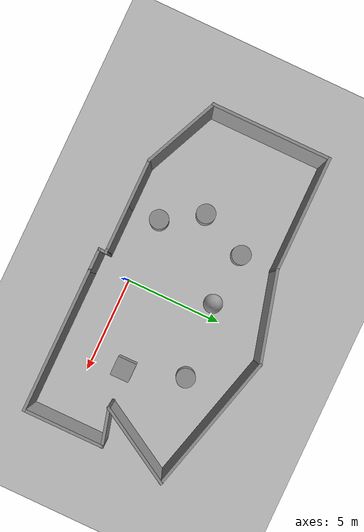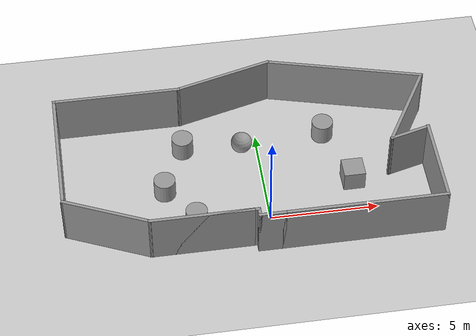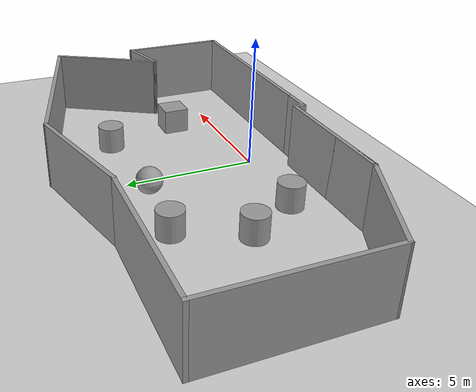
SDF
<sdf version="1.7">
 <world name="default">
  <light name="sun" type="directional">
   <pose>0 0 10 0 -0 0</pose>
   <diffuse>0.8 0.8 0.8 1</diffuse>
   <specular>0.2 0.2 0.2 1</specular>
   <attenuation>
    <range>1000</range>
    <constant>0.9</constant>
    <linear>0.01</linear>
    <quadratic>0.001</quadratic>
   </attenuation>
   <direction>-0.5 0.1 -0.9</direction>
   <spot><inner_angle>0</inner_angle><outer_angle>0</outer_angle><falloff>0</falloff></spot>
  </light>
  <model name="ground_plane">
   <static>1</static>
   <link name="link">
    <collision name="collision">
     <geometry><plane><normal>0 0 1</normal><size>100 100</size></plane></geometry>
     <surface>
      <contact><collide_bitmask>65535</collide_bitmask></contact>
      <friction><ode><mu>100</mu><mu2>50</mu2></ode></friction>
     </surface>
    </collision>
    <visual name="visual">
     <cast_shadows>0</cast_shadows>
     <geometry><plane><normal>0 0 1</normal><size>100 100</size></plane></geometry>
     <material>
      <script><uri>file://media/materials/scripts/gazebo.material</uri><name>Gazebo/Grey</name></script>
     </material>
    </visual>
   </link>
  </model>
  <gravity>0 0 -9.8</gravity>
  <magnetic_field>6e-06 2.3e-05 -4.2e-05</magnetic_field>
  <atmosphere type="adiabatic"/>
  <physics type="ode">
   <max_step_size>0.001</max_step_size>
   <real_time_factor>1</real_time_factor>
   <real_time_update_rate>1000</real_time_update_rate>
  </physics>
  <scene><ambient>0.4 0.4 0.4 1</ambient><background>0.7 0.7 0.7 1</background><shadows>1</shadows></scene>
  <spherical_coordinates>
   <surface_model>EARTH_WGS84</surface_model>
   <latitude_deg>0</latitude_deg>
   <longitude_deg>0</longitude_deg>
   <elevation>0</elevation>
   <heading_deg>0</heading_deg>
  </spherical_coordinates>
  <model name="Untitled">
   <pose>-0.623697 2.90946 0 0 -0 0</pose>
   <link name="Wall_10">
    <collision name="Wall_10_Collision">
     <geometry><box><size>2 0.15 2.5</size></box></geometry>
     <pose>0 0 1.25 0 -0 0</pose>
    </collision>
    <visual name="Wall_10_Visual">
     <pose>0 0 1.25 0 -0 0</pose>
     <geometry><box><size>2 0.15 2.5</size></box></geometry>
     <material>
      <script><uri>file://media/materials/scripts/gazebo.material</uri><name>Gazebo/Grey</name></script>
      <ambient>1 1 1 1</ambient>
     </material>
     <meta><layer>0</layer></meta>
    </visual>
    <pose>7.41318 -0.793193 0 0 -0 -2.87979</pose>
   </link>
   <link name="Wall_11">
    <collision name="Wall_11_Collision">
     <geometry><box><size>4.5 0.15 2.5</size></box></geometry>
     <pose>0 0 1.25 0 -0 0</pose>
    </collision>
    <visual name="Wall_11_Visual">
     <pose>0 0 1.25 0 -0 0</pose>
     <geometry><box><size>4.5 0.15 2.5</size></box></geometry>
     <material>
      <script><uri>file://media/materials/scripts/gazebo.material</uri><name>Gazebo/Grey</name></script>
      <ambient>1 1 1 1</ambient>
     </material>
     <meta><layer>0</layer></meta>
    </visual>
    <pose>7.60719 0.851004 0 0 -0 1.0472</pose>
   </link>
   <link name="Wall_12">
    <collision name="Wall_12_Collision">
     <geometry><box><size>7.5 0.15 2.5</size></box></geometry>
     <pose>0 0 1.25 0 -0 0</pose>
    </collision>
    <visual name="Wall_12_Visual">
     <pose>0 0 1.25 0 -0 0</pose>
     <geometry><box><size>7.5 0.15 2.5</size></box></geometry>
     <material>
      <script><uri>file://media/materials/scripts/gazebo.material</uri><name>Gazebo/Grey</name></script>
      <ambient>1 1 1 1</ambient>
     </material>
     <meta><layer>0</layer></meta>
    </visual>
    <pose>5.14492 3.68577 0 0 -0 2.87979</pose>
   </link>
   <link name="Wall_13">
    <collision name="Wall_13_Collision">
     <geometry><box><size>4.75 0.15 2.5</size></box></geometry>
     <pose>0 0 1.25 0 -0 0</pose>
    </collision>
    <visual name="Wall_13_Visual">
     <pose>0 0 1.25 0 -0 0</pose>
     <geometry><box><size>4.75 0.15 2.5</size></box></geometry>
     <material>
      <script><uri>file://media/materials/scripts/gazebo.material</uri><name>Gazebo/Grey</name></script>
      <ambient>1 1 1 1</ambient>
     </material>
     <meta><layer>0</layer></meta>
    </visual>
    <pose>-0.62649 4.04165 0 0 -0 -2.87979</pose>
   </link>
   <link name="Wall_14">
    <collision name="Wall_14_Collision">
     <geometry><box><size>6 0.15 2.5</size></box></geometry>
     <pose>0 0 1.25 0 -0 0</pose>
    </collision>
    <visual name="Wall_14_Visual">
     <pose>0 0 1.25 0 -0 0</pose>
     <geometry><box><size>6 0.15 2.5</size></box></geometry>
     <material>
      <script><uri>file://media/materials/scripts/gazebo.material</uri><name>Gazebo/Grey</name></script>
      <ambient>1 1 1 1</ambient>
     </material>
     <meta><layer>0</layer></meta>
    </visual>
    <pose>-5.77312 3.44636 0 0 -0 3.14159</pose>
   </link>
   <link name="Wall_15">
    <collision name="Wall_15_Collision">
     <geometry><box><size>6.25 0.15 2.5</size></box></geometry>
     <pose>0 0 1.25 0 -0 0</pose>
    </collision>
    <visual name="Wall_15_Visual">
     <pose>0 0 1.25 0 -0 0</pose>
     <geometry><box><size>6.25 0.15 2.5</size></box></geometry>
     <material>
      <script><uri>file://media/materials/scripts/gazebo.material</uri><name>Gazebo/Grey</name></script>
      <ambient>1 1 1 1</ambient>
     </material>
     <meta><layer>0</layer></meta>
    </visual>
    <pose>-8.69812 0.396362 0 0 -0 -1.5708</pose>
   </link>
   <link name="Wall_16">
    <collision name="Wall_16_Collision">
     <geometry><box><size>4.20566 0.15 2.5</size></box></geometry>
     <pose>0 0 1.25 0 -0 0</pose>
    </collision>
    <visual name="Wall_16_Visual">
     <pose>0 0 1.25 0 -0 0</pose>
     <geometry><box><size>4.20566 0.15 2.5</size></box></geometry>
     <material>
      <script><uri>file://media/materials/scripts/gazebo.material</uri><name>Gazebo/Grey</name></script>
      <ambient>1 1 1 1</ambient>
     </material>
     <meta><layer>0</layer></meta>
    </visual>
    <pose>-6.84573 -3.47871 0 0 -0 -0.419031</pose>
   </link>
   <link name="Wall_3">
    <collision name="Wall_3_Collision">
     <geometry><box><size>4.75 0.15 2.5</size></box></geometry>
     <pose>0 0 1.25 0 -0 0</pose>
    </collision>
    <visual name="Wall_3_Visual">
     <pose>0 0 1.25 0 -0 0</pose>
     <geometry><box><size>4.75 0.15 2.5</size></box></geometry>
     <material>
      <script><uri>file://media/materials/scripts/gazebo.material</uri><name>Gazebo/Grey</name></script>
      <ambient>1 1 1 1</ambient>
     </material>
     <meta><layer>0</layer></meta>
    </visual>
    <pose>-2.69334 -4.30379 0 0 -0 3.14159</pose>
   </link>
   <link name="Wall_4">
    <collision name="Wall_4_Collision">
     <geometry><box><size>5 0.15 2.5</size></box></geometry>
     <pose>0 0 1.25 0 -0 0</pose>
    </collision>
    <visual name="Wall_4_Visual">
     <pose>0 0 1.25 0 -0 0</pose>
     <geometry><box><size>5 0.15 2.5</size></box></geometry>
     <material>
      <script><uri>file://media/materials/scripts/gazebo.material</uri><name>Gazebo/Grey</name></script>
      <ambient>1 1 1 1</ambient>
     </material>
     <meta><layer>0</layer></meta>
    </visual>
    <pose>-2.56834 -4.30379 0 0 -0 0</pose>
   </link>
   <link name="Wall_5">
    <collision name="Wall_5_Collision">
     <geometry><box><size>0.5 0.15 2.5</size></box></geometry>
     <pose>0 0 1.25 0 -0 0</pose>
    </collision>
    <visual name="Wall_5_Visual">
     <pose>0 0 1.25 0 -0 0</pose>
     <geometry><box><size>0.5 0.15 2.5</size></box></geometry>
     <material>
      <script><uri>file://media/materials/scripts/gazebo.material</uri><name>Gazebo/Grey</name></script>
      <ambient>1 1 1 1</ambient>
     </material>
     <meta><layer>0</layer></meta>
    </visual>
    <pose>-0.143343 -4.47879 0 0 -0 -1.5708</pose>
   </link>
   <link name="Wall_6">
    <collision name="Wall_6_Collision">
     <geometry><box><size>1.25 0.15 2.5</size></box></geometry>
     <pose>0 0 1.25 0 -0 0</pose>
    </collision>
    <visual name="Wall_6_Visual">
     <pose>0 0 1.25 0 -0 0</pose>
     <geometry><box><size>1.25 0.15 2.5</size></box></geometry>
     <material>
      <script><uri>file://media/materials/scripts/gazebo.material</uri><name>Gazebo/Grey</name></script>
      <ambient>1 1 1 1</ambient>
     </material>
     <meta><layer>0</layer></meta>
    </visual>
    <pose>0.406657 -4.65379 0 0 -0 0</pose>
   </link>
   <link name="Wall_7">
    <collision name="Wall_7_Collision">
     <geometry><box><size>0.15 0.15 2.5</size></box></geometry>
     <pose>0 0 1.25 0 -0 0</pose>
    </collision>
    <visual name="Wall_7_Visual">
     <pose>0 0 1.25 0 -0 0</pose>
     <geometry><box><size>0.15 0.15 2.5</size></box></geometry>
     <material>
      <script><uri>file://media/materials/scripts/gazebo.material</uri><name>Gazebo/Grey</name></script>
      <ambient>1 1 1 1</ambient>
     </material>
     <meta><layer>0</layer></meta>
    </visual>
    <pose>0.956657 -4.65379 0 0 -0 0</pose>
   </link>
   <link name="Wall_8">
    <collision name="Wall_8_Collision">
     <geometry><box><size>7.5 0.15 2.5</size></box></geometry>
     <pose>0 0 1.25 0 -0 0</pose>
    </collision>
    <visual name="Wall_8_Visual">
     <pose>0 0 1.25 0 -0 0</pose>
     <geometry><box><size>7.5 0.15 2.5</size></box></geometry>
     <material>
      <script><uri>file://media/materials/scripts/gazebo.material</uri><name>Gazebo/Grey</name></script>
      <ambient>1 1 1 1</ambient>
     </material>
     <meta><layer>0</layer></meta>
    </visual>
    <pose>4.63166 -4.65379 0 0 -0 0</pose>
   </link>
   <link name="Wall_9">
    <collision name="Wall_9_Collision">
     <geometry><box><size>4.25 0.15 2.5</size></box></geometry>
     <pose>0 0 1.25 0 -0 0</pose>
    </collision>
    <visual name="Wall_9_Visual">
     <pose>0 0 1.25 0 -0 0</pose>
     <geometry><box><size>4.25 0.15 2.5</size></box></geometry>
     <material>
      <script><uri>file://media/materials/scripts/gazebo.material</uri><name>Gazebo/Grey</name></script>
      <ambient>1 1 1 1</ambient>
     </material>
     <meta><layer>0</layer></meta>
    </visual>
    <pose>8.30666 -2.60379 0 0 -0 1.5708</pose>
   </link>
   <static>1</static>
  </model>
  <model name="unit_cylinder">
   <pose>-3.52725 4.58731 0.499998 3e-06 -4e-06 0</pose>
   <link name="link">
    <inertial>
     <mass>1</mass>
     <inertia><ixx>0.145833</ixx><ixy>0</ixy><ixz>0</ixz><iyy>0.145833</iyy><iyz>0</iyz><izz>0.125</izz></inertia>
    </inertial>
    <collision name="collision">
     <geometry><cylinder><radius>0.5</radius><length>1</length></cylinder></geometry>
    </collision>
    <visual name="visual">
     <geometry><cylinder><radius>0.5</radius><length>1</length></cylinder></geometry>
     <material>
      <script><name>Gazebo/Grey</name><uri>file://media/materials/scripts/gazebo.material</uri></script>
     </material>
    </visual>
   </link>
  </model>
  <model name="unit_cylinder_0">
   <pose>-4.63652 2.12364 0.499992 -3e-06 -4e-06 -0</pose>
   <link name="link">
    <inertial>
     <mass>1</mass>
     <inertia><ixx>0.145833</ixx><ixy>0</ixy><ixz>0</ixz><iyy>0.145833</iyy><iyz>0</iyz><izz>0.125</izz></inertia>
    </inertial>
    <collision name="collision">
     <geometry><cylinder><radius>0.5</radius><length>1</length></cylinder></geometry>
    </collision>
    <visual name="visual">
     <geometry><cylinder><radius>0.5</radius><length>1</length></cylinder></geometry>
     <material>
      <script><name>Gazebo/Grey</name><uri>file://media/materials/scripts/gazebo.material</uri></script>
     </material>
    </visual>
   </link>
  </model>
  <model name="unit_cylinder_1">
   <pose>-3.39256 0.121809 0.499993 -3e-06 -3e-06 0</pose>
   <link name="link">
    <inertial>
     <mass>1</mass>
     <inertia><ixx>0.145833</ixx><ixy>0</ixy><ixz>0</ixz><iyy>0.145833</iyy><iyz>0</iyz><izz>0.125</izz></inertia>
    </inertial>
    <collision name="collision">
     <geometry><cylinder><radius>0.5</radius><length>1</length></cylinder></geometry>
    </collision>
    <visual name="visual">
     <geometry><cylinder><radius>0.5</radius><length>1</length></cylinder></geometry>
     <material>
      <script><name>Gazebo/Grey</name><uri>file://media/materials/scripts/gazebo.material</uri></script>
     </material>
    </visual>
   </link>
  </model>
  <model name="unit_cylinder_2">
   <pose>3.19237 4.68039 0.499997 3e-06 4e-06 -0</pose>
   <link name="link">
    <inertial>
     <mass>1</mass>
     <inertia><ixx>0.145833</ixx><ixy>0</ixy><ixz>0</ixz><iyy>0.145833</iyy><iyz>0</iyz><izz>0.125</izz></inertia>
    </inertial>
    <collision name="collision">
     <geometry><cylinder><radius>0.5</radius><length>1</length></cylinder></geometry>
    </collision>
    <visual name="visual">
     <geometry><cylinder><radius>0.5</radius><length>1</length></cylinder></geometry>
     <material>
      <script><name>Gazebo/Grey</name><uri>file://media/materials/scripts/gazebo.material</uri></script>
     </material>
    </visual>
   </link>
  </model>
  <model name="unit_box">
   <pose>4.11558 1.67772 0.499995 -1e-05 -0 0</pose>
   <link name="link">
    <inertial>
     <mass>1</mass>
     <inertia>
      <ixx>0.166667</ixx>
      <ixy>0</ixy>
      <ixz>0</ixz>
      <iyy>0.166667</iyy>
      <iyz>0</iyz>
      <izz>0.166667</izz>
     </inertia>
    </inertial>
    <collision name="collision"><geometry><box><size>1 1 1</size></box></geometry></collision>
    <visual name="visual">
     <geometry><box><size>1 1 1</size></box></geometry>
     <material>
      <script><name>Gazebo/Grey</name><uri>file://media/materials/scripts/gazebo.material</uri></script>
     </material>
    </visual>
   </link>
  </model>
  <model name="unit_sphere">
   <pose>-0.73694 4.35855 0.5 0 -0 0</pose>
   <link name="link">
    <inertial>
     <mass>1</mass>
     <inertia><ixx>0.1</ixx><ixy>0</ixy><ixz>0</ixz><iyy>0.1</iyy><iyz>0</iyz><izz>0.1</izz></inertia>
    </inertial>
    <collision name="collision"><geometry><sphere><radius>0.5</radius></sphere></geometry></collision>
    <visual name="visual">
     <geometry><sphere><radius>0.5</radius></sphere></geometry>
     <material>
      <script><name>Gazebo/Grey</name><uri>file://media/materials/scripts/gazebo.material</uri></script>
     </material>
    </visual>
   </link>
  </model>
 </world>
</sdf>
